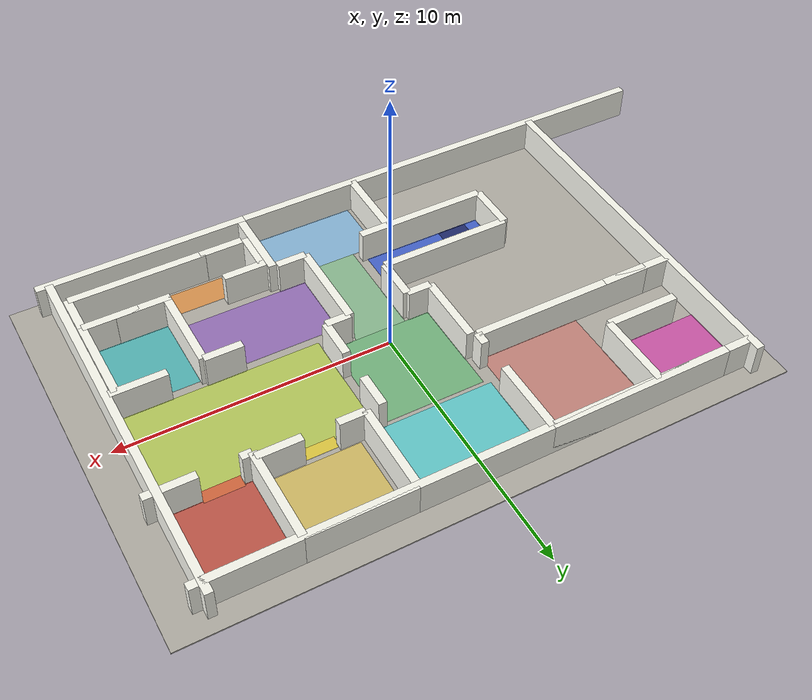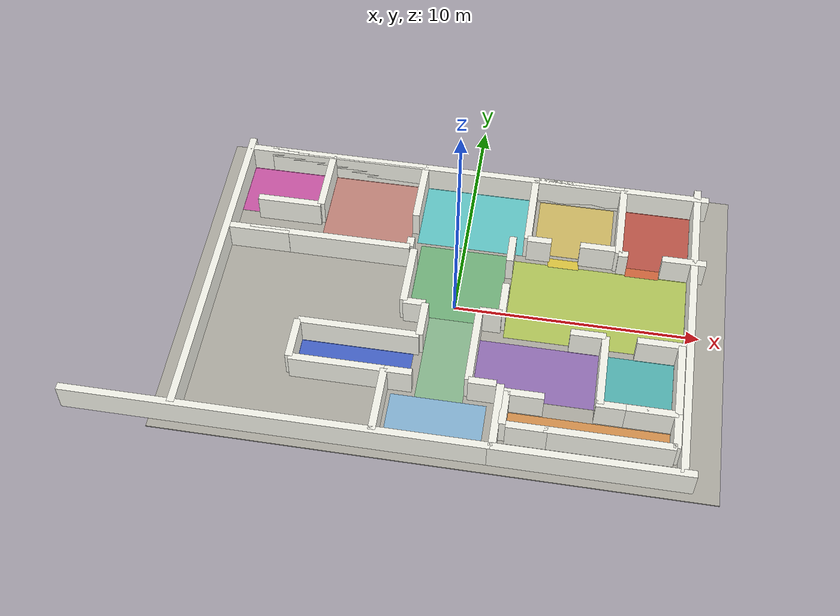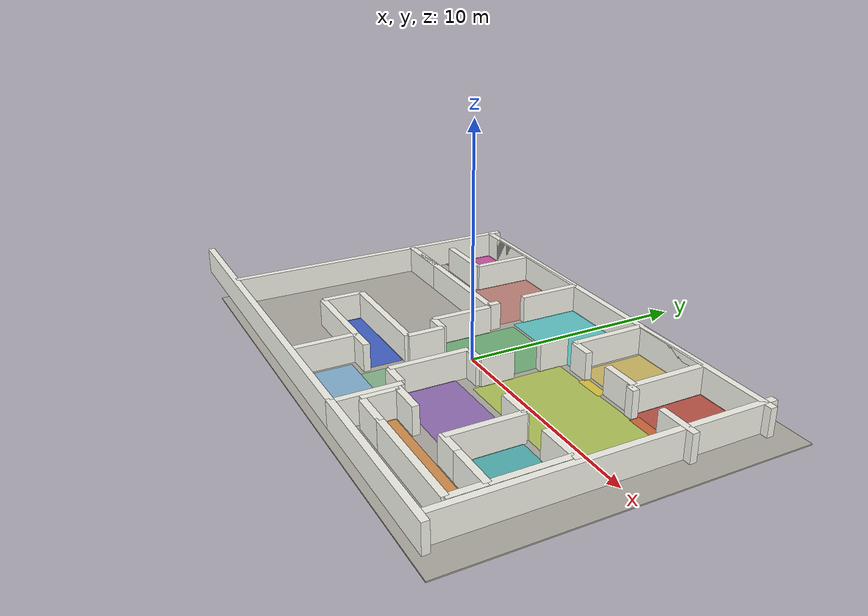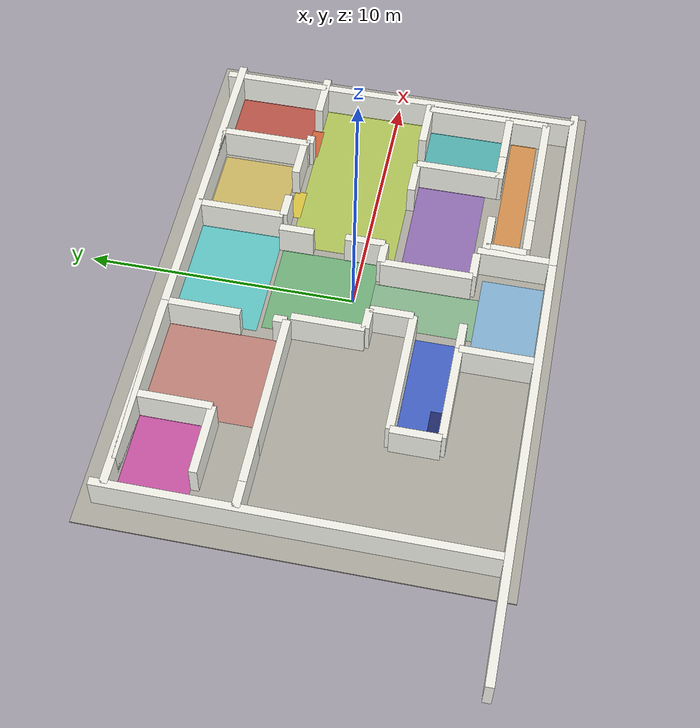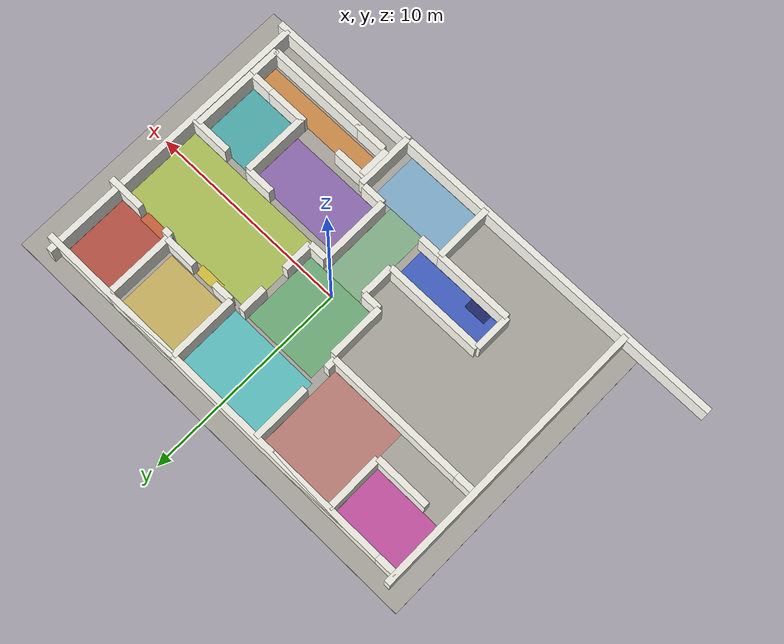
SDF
<sdf version="1.10">
 <world name="map">
  <model name="facility_floor">
   <static>true</static>
   <link name="floor_link">
    <pose>0 0 -0.025000000000000001 0 0 0</pose>
    <collision name="collision">
     <geometry><box><size>22 15 0.050000000000000003</size></box></geometry>
    </collision>
    <visual name="visual">
     <geometry><box><size>22 15 0.050000000000000003</size></box></geometry>
     <material>
      <ambient>0.699999988 0.689999998 0.649999976 1</ambient>
      <diffuse>0.699999988 0.689999998 0.649999976 1</diffuse>
      <specular>0.100000001 0.100000001 0.0799999982 1</specular>
     </material>
    </visual>
    <inertial>
     <mass>1</mass>
     <inertia><ixx>1</ixx><ixy>0</ixy><ixz>0</ixz><iyy>1</iyy><iyz>0</iyz><izz>1</izz></inertia>
    </inertial>
   </link>
  </model>
  <model name="wall_outer_north">
   <static>true</static>
   <pose>0 6.5 0.59999999999999998 0 0 0</pose>
   <link name="link">
    <collision name="collision">
     <geometry><box><size>20 0.29999999999999999 1.2</size></box></geometry>
    </collision>
    <visual name="visual">
     <geometry><box><size>20 0.29999999999999999 1.2</size></box></geometry>
     <material>
      <ambient>0.980000019 0.980000019 0.939999998 1</ambient>
      <diffuse>0.980000019 0.980000019 0.939999998 1</diffuse>
      <specular>0.349999994 0.349999994 0.319999993 1</specular>
     </material>
    </visual>
    <inertial>
     <mass>1</mass>
     <inertia><ixx>1</ixx><ixy>0</ixy><ixz>0</ixz><iyy>1</iyy><iyz>0</iyz><izz>1</izz></inertia>
    </inertial>
   </link>
  </model>
  <model name="wall_outer_west">
   <static>true</static>
   <pose>-10 0 0.59999999999999998 0 0 0</pose>
   <link name="link">
    <collision name="collision">
     <geometry><box><size>0.29999999999999999 14 1.2</size></box></geometry>
    </collision>
    <visual name="visual">
     <geometry><box><size>0.29999999999999999 14 1.2</size></box></geometry>
     <material>
      <ambient>0.980000019 0.980000019 0.939999998 1</ambient>
      <diffuse>0.980000019 0.980000019 0.939999998 1</diffuse>
      <specular>0.349999994 0.349999994 0.319999993 1</specular>
     </material>
    </visual>
    <inertial>
     <mass>1</mass>
     <inertia><ixx>1</ixx><ixy>0</ixy><ixz>0</ixz><iyy>1</iyy><iyz>0</iyz><izz>1</izz></inertia>
    </inertial>
   </link>
  </model>
  <model name="wall_outer_east">
   <static>true</static>
   <pose>9.5208196640014648 0 0.60000002384185791 0 0 0</pose>
   <link name="link">
    <collision name="collision">
     <geometry><box><size>0.29999999999999999 14 1.2</size></box></geometry>
    </collision>
    <visual name="visual">
     <geometry><box><size>0.29999999999999999 14 1.2</size></box></geometry>
     <material>
      <ambient>0.980000019 0.980000019 0.939999998 1</ambient>
      <diffuse>0.980000019 0.980000019 0.939999998 1</diffuse>
      <specular>0.349999994 0.349999994 0.319999993 1</specular>
     </material>
    </visual>
    <inertial>
     <mass>1</mass>
     <inertia><ixx>1</ixx><ixy>0</ixy><ixz>0</ixz><iyy>1</iyy><iyz>0</iyz><izz>1</izz></inertia>
    </inertial>
   </link>
  </model>
  <model name="wall_outer_south_west">
   <static>true</static>
   <pose>-6.0999999999999996 -7 0.59999999999999998 0 0 0</pose>
   <link name="link">
    <collision name="collision">
     <geometry><box><size>16.800000000000001 0.29999999999999999 1.2</size></box></geometry>
    </collision>
    <visual name="visual">
     <geometry><box><size>16.800000000000001 0.29999999999999999 1.2</size></box></geometry>
     <material>
      <ambient>0.980000019 0.980000019 0.939999998 1</ambient>
      <diffuse>0.980000019 0.980000019 0.939999998 1</diffuse>
      <specular>0.349999994 0.349999994 0.319999993 1</specular>
     </material>
    </visual>
    <inertial>
     <mass>1</mass>
     <inertia><ixx>1</ixx><ixy>0</ixy><ixz>0</ixz><iyy>1</iyy><iyz>0</iyz><izz>1</izz></inertia>
    </inertial>
   </link>
  </model>
  <model name="wall_outer_south_east">
   <static>true</static>
   <pose>6.0999999999999996 -7 0.59999999999999998 0 0 0</pose>
   <link name="link">
    <collision name="collision">
     <geometry><box><size>7.7999999999999998 0.29999999999999999 1.2</size></box></geometry>
    </collision>
    <visual name="visual">
     <geometry><box><size>7.7999999999999998 0.29999999999999999 1.2</size></box></geometry>
     <material>
      <ambient>0.980000019 0.980000019 0.939999998 1</ambient>
      <diffuse>0.980000019 0.980000019 0.939999998 1</diffuse>
      <specular>0.349999994 0.349999994 0.319999993 1</specular>
     </material>
    </visual>
    <inertial>
     <mass>1</mass>
     <inertia><ixx>1</ixx><ixy>0</ixy><ixz>0</ixz><iyy>1</iyy><iyz>0</iyz><izz>1</izz></inertia>
    </inertial>
   </link>
  </model>
  <model name="wall_lobby_west">
   <static>true</static>
   <pose>-2.2000000000000002 -5.5999999999999996 0.59999999999999998 0 0 0</pose>
   <link name="link">
    <collision name="collision">
     <geometry><box><size>0.29999999999999999 2.7999999999999998 1.2</size></box></geometry>
    </collision>
    <visual name="visual">
     <geometry><box><size>0.29999999999999999 2.7999999999999998 1.2</size></box></geometry>
     <material>
      <ambient>0.980000019 0.980000019 0.939999998 1</ambient>
      <diffuse>0.980000019 0.980000019 0.939999998 1</diffuse>
      <specular>0.349999994 0.349999994 0.319999993 1</specular>
     </material>
    </visual>
    <inertial>
     <mass>1</mass>
     <inertia><ixx>1</ixx><ixy>0</ixy><ixz>0</ixz><iyy>1</iyy><iyz>0</iyz><izz>1</izz></inertia>
    </inertial>
   </link>
  </model>
  <model name="wall_lobby_east">
   <static>true</static>
   <pose>2.3627526760101318 -5.5999999046325684 0.60000002384185791 0 0 0</pose>
   <link name="link">
    <collision name="collision">
     <geometry><box><size>0.29999999999999999 2.7999999999999998 1.2</size></box></geometry>
    </collision>
    <visual name="visual">
     <geometry><box><size>0.29999999999999999 2.7999999999999998 1.2</size></box></geometry>
     <material>
      <ambient>0.980000019 0.980000019 0.939999998 1</ambient>
      <diffuse>0.980000019 0.980000019 0.939999998 1</diffuse>
      <specular>0.349999994 0.349999994 0.319999993 1</specular>
     </material>
    </visual>
    <inertial>
     <mass>1</mass>
     <inertia><ixx>1</ixx><ixy>0</ixy><ixz>0</ixz><iyy>1</iyy><iyz>0</iyz><izz>1</izz></inertia>
    </inertial>
   </link>
  </model>
  <model name="wall_lobby_north_left">
   <static>true</static>
   <pose>-1.6499999999999999 -4.2000000000000002 0.59999999999999998 0 0 0</pose>
   <link name="link">
    <collision name="collision">
     <geometry><box><size>1.1000000000000001 0.29999999999999999 1.2</size></box></geometry>
    </collision>
    <visual name="visual">
     <geometry><box><size>1.1000000000000001 0.29999999999999999 1.2</size></box></geometry>
     <material>
      <ambient>0.980000019 0.980000019 0.939999998 1</ambient>
      <diffuse>0.980000019 0.980000019 0.939999998 1</diffuse>
      <specular>0.349999994 0.349999994 0.319999993 1</specular>
     </material>
    </visual>
    <inertial>
     <mass>1</mass>
     <inertia><ixx>1</ixx><ixy>0</ixy><ixz>0</ixz><iyy>1</iyy><iyz>0</iyz><izz>1</izz></inertia>
    </inertial>
   </link>
  </model>
  <model name="wall_lobby_north_right">
   <static>true</static>
   <pose>1.6499999999999999 -4.2000000000000002 0.59999999999999998 0 0 0</pose>
   <link name="link">
    <collision name="collision">
     <geometry><box><size>1.1000000000000001 0.29999999999999999 1.2</size></box></geometry>
    </collision>
    <visual name="visual">
     <geometry><box><size>1.1000000000000001 0.29999999999999999 1.2</size></box></geometry>
     <material>
      <ambient>0.980000019 0.980000019 0.939999998 1</ambient>
      <diffuse>0.980000019 0.980000019 0.939999998 1</diffuse>
      <specular>0.349999994 0.349999994 0.319999993 1</specular>
     </material>
    </visual>
    <inertial>
     <mass>1</mass>
     <inertia><ixx>1</ixx><ixy>0</ixy><ixz>0</ixz><iyy>1</iyy><iyz>0</iyz><izz>1</izz></inertia>
    </inertial>
   </link>
  </model>
  <model name="wall_mother_base_west">
   <static>true</static>
   <pose>-6 -3.2999999999999998 0.59999999999999998 0 0 0</pose>
   <link name="link">
    <collision name="collision">
     <geometry><box><size>0.29999999999999999 1.8 1.2</size></box></geometry>
    </collision>
    <visual name="visual">
     <geometry><box><size>0.29999999999999999 1.8 1.2</size></box></geometry>
     <material>
      <ambient>0.980000019 0.980000019 0.939999998 1</ambient>
      <diffuse>0.980000019 0.980000019 0.939999998 1</diffuse>
      <specular>0.349999994 0.349999994 0.319999993 1</specular>
     </material>
    </visual>
    <inertial>
     <mass>1</mass>
     <inertia><ixx>1</ixx><ixy>0</ixy><ixz>0</ixz><iyy>1</iyy><iyz>0</iyz><izz>1</izz></inertia>
    </inertial>
   </link>
  </model>
  <model name="wall_mother_base_north">
   <static>true</static>
   <pose>-3.5499999999999998 -2.3999999999999999 0.59999999999999998 0 0 0</pose>
   <link name="link">
    <collision name="collision">
     <geometry><box><size>4.9000000000000004 0.29999999999999999 1.2</size></box></geometry>
    </collision>
    <visual name="visual">
     <geometry><box><size>4.9000000000000004 0.29999999999999999 1.2</size></box></geometry>
     <material>
      <ambient>0.980000019 0.980000019 0.939999998 1</ambient>
      <diffuse>0.980000019 0.980000019 0.939999998 1</diffuse>
      <specular>0.349999994 0.349999994 0.319999993 1</specular>
     </material>
    </visual>
    <inertial>
     <mass>1</mass>
     <inertia><ixx>1</ixx><ixy>0</ixy><ixz>0</ixz><iyy>1</iyy><iyz>0</iyz><izz>1</izz></inertia>
    </inertial>
   </link>
  </model>
  <model name="wall_mother_base_south">
   <static>true</static>
   <pose>-4.0999999999999996 -4.2000000000000002 0.59999999999999998 0 0 0</pose>
   <link name="link">
    <collision name="collision">
     <geometry><box><size>3.7999999999999998 0.29999999999999999 1.2</size></box></geometry>
    </collision>
    <visual name="visual">
     <geometry><box><size>3.7999999999999998 0.29999999999999999 1.2</size></box></geometry>
     <material>
      <ambient>0.980000019 0.980000019 0.939999998 1</ambient>
      <diffuse>0.980000019 0.980000019 0.939999998 1</diffuse>
      <specular>0.349999994 0.349999994 0.319999993 1</specular>
     </material>
    </visual>
    <inertial>
     <mass>1</mass>
     <inertia><ixx>1</ixx><ixy>0</ixy><ixz>0</ixz><iyy>1</iyy><iyz>0</iyz><izz>1</izz></inertia>
    </inertial>
   </link>
  </model>
  <model name="wall_corridor_east">
   <static>true</static>
   <pose>1.1000000000000001 -2.5 0.59999999999999998 0 0 0</pose>
   <link name="link">
    <collision name="collision">
     <geometry><box><size>0.29999999999999999 3.3999999999999999 1.2</size></box></geometry>
    </collision>
    <visual name="visual">
     <geometry><box><size>0.29999999999999999 3.3999999999999999 1.2</size></box></geometry>
     <material>
      <ambient>0.980000019 0.980000019 0.939999998 1</ambient>
      <diffuse>0.980000019 0.980000019 0.939999998 1</diffuse>
      <specular>0.349999994 0.349999994 0.319999993 1</specular>
     </material>
    </visual>
    <inertial>
     <mass>1</mass>
     <inertia><ixx>1</ixx><ixy>0</ixy><ixz>0</ixz><iyy>1</iyy><iyz>0</iyz><izz>1</izz></inertia>
    </inertial>
   </link>
  </model>
  <model name="wall_corridor_west">
   <static>true</static>
   <pose>-1.1000000000000001 -1.6000000000000001 0.59999999999999998 0 0 0</pose>
   <link name="link">
    <collision name="collision">
     <geometry><box><size>0.29999999999999999 1.6000000000000001 1.2</size></box></geometry>
    </collision>
    <visual name="visual">
     <geometry><box><size>0.29999999999999999 1.6000000000000001 1.2</size></box></geometry>
     <material>
      <ambient>0.980000019 0.980000019 0.939999998 1</ambient>
      <diffuse>0.980000019 0.980000019 0.939999998 1</diffuse>
      <specular>0.349999994 0.349999994 0.319999993 1</specular>
     </material>
    </visual>
    <inertial>
     <mass>1</mass>
     <inertia><ixx>1</ixx><ixy>0</ixy><ixz>0</ixz><iyy>1</iyy><iyz>0</iyz><izz>1</izz></inertia>
    </inertial>
   </link>
  </model>
  <model name="wall_hall_south_left">
   <static>true</static>
   <pose>-1.55 -0.80000000000000004 0.59999999999999998 0 0 0</pose>
   <link name="link">
    <collision name="collision">
     <geometry><box><size>0.90000000000000002 0.29999999999999999 1.2</size></box></geometry>
    </collision>
    <visual name="visual">
     <geometry><box><size>0.90000000000000002 0.29999999999999999 1.2</size></box></geometry>
     <material>
      <ambient>0.980000019 0.980000019 0.939999998 1</ambient>
      <diffuse>0.980000019 0.980000019 0.939999998 1</diffuse>
      <specular>0.349999994 0.349999994 0.319999993 1</specular>
     </material>
    </visual>
    <inertial>
     <mass>1</mass>
     <inertia><ixx>1</ixx><ixy>0</ixy><ixz>0</ixz><iyy>1</iyy><iyz>0</iyz><izz>1</izz></inertia>
    </inertial>
   </link>
  </model>
  <model name="wall_hall_south_right">
   <static>true</static>
   <pose>1.55 -0.80000000000000004 0.59999999999999998 0 0 0</pose>
   <link name="link">
    <collision name="collision">
     <geometry><box><size>0.90000000000000002 0.29999999999999999 1.2</size></box></geometry>
    </collision>
    <visual name="visual">
     <geometry><box><size>0.90000000000000002 0.29999999999999999 1.2</size></box></geometry>
     <material>
      <ambient>0.980000019 0.980000019 0.939999998 1</ambient>
      <diffuse>0.980000019 0.980000019 0.939999998 1</diffuse>
      <specular>0.349999994 0.349999994 0.319999993 1</specular>
     </material>
    </visual>
    <inertial>
     <mass>1</mass>
     <inertia><ixx>1</ixx><ixy>0</ixy><ixz>0</ixz><iyy>1</iyy><iyz>0</iyz><izz>1</izz></inertia>
    </inertial>
   </link>
  </model>
  <model name="wall_hall_west_lower">
   <static>true</static>
   <pose>-2 0.55000000000000004 0.59999999999999998 0 0 0</pose>
   <link name="link">
    <collision name="collision">
     <geometry><box><size>0.29999999999999999 2.7000000000000002 1.2</size></box></geometry>
    </collision>
    <visual name="visual">
     <geometry><box><size>0.29999999999999999 2.7000000000000002 1.2</size></box></geometry>
     <material>
      <ambient>0.980000019 0.980000019 0.939999998 1</ambient>
      <diffuse>0.980000019 0.980000019 0.939999998 1</diffuse>
      <specular>0.349999994 0.349999994 0.319999993 1</specular>
     </material>
    </visual>
    <inertial>
     <mass>1</mass>
     <inertia><ixx>1</ixx><ixy>0</ixy><ixz>0</ixz><iyy>1</iyy><iyz>0</iyz><izz>1</izz></inertia>
    </inertial>
   </link>
  </model>
  <model name="wall_hall_east_lower">
   <static>true</static>
   <pose>2 -0.050000000000000003 0.59999999999999998 0 0 0</pose>
   <link name="link">
    <collision name="collision">
     <geometry><box><size>0.29999999999999999 1.5 1.2</size></box></geometry>
    </collision>
    <visual name="visual">
     <geometry><box><size>0.29999999999999999 1.5 1.2</size></box></geometry>
     <material>
      <ambient>0.980000019 0.980000019 0.939999998 1</ambient>
      <diffuse>0.980000019 0.980000019 0.939999998 1</diffuse>
      <specular>0.349999994 0.349999994 0.319999993 1</specular>
     </material>
    </visual>
    <inertial>
     <mass>1</mass>
     <inertia><ixx>1</ixx><ixy>0</ixy><ixz>0</ixz><iyy>1</iyy><iyz>0</iyz><izz>1</izz></inertia>
    </inertial>
   </link>
  </model>
  <model name="wall_hall_east_upper">
   <static>true</static>
   <pose>2 2.5499999999999998 0.59999999999999998 0 0 0</pose>
   <link name="link">
    <collision name="collision">
     <geometry><box><size>0.29999999999999999 1.3 1.2</size></box></geometry>
    </collision>
    <visual name="visual">
     <geometry><box><size>0.29999999999999999 1.3 1.2</size></box></geometry>
     <material>
      <ambient>0.980000019 0.980000019 0.939999998 1</ambient>
      <diffuse>0.980000019 0.980000019 0.939999998 1</diffuse>
      <specular>0.349999994 0.349999994 0.319999993 1</specular>
     </material>
    </visual>
    <inertial>
     <mass>1</mass>
     <inertia><ixx>1</ixx><ixy>0</ixy><ixz>0</ixz><iyy>1</iyy><iyz>0</iyz><izz>1</izz></inertia>
    </inertial>
   </link>
  </model>
  <model name="wall_lab_north">
   <static>true</static>
   <pose>-5.5999999999999996 6.5 0.59999999999999998 0 0 0</pose>
   <link name="link">
    <collision name="collision">
     <geometry><box><size>6.7999999999999998 0.29999999999999999 1.2</size></box></geometry>
    </collision>
    <visual name="visual">
     <geometry><box><size>6.7999999999999998 0.29999999999999999 1.2</size></box></geometry>
     <material>
      <ambient>0.980000019 0.980000019 0.939999998 1</ambient>
      <diffuse>0.980000019 0.980000019 0.939999998 1</diffuse>
      <specular>0.349999994 0.349999994 0.319999993 1</specular>
     </material>
    </visual>
    <inertial>
     <mass>1</mass>
     <inertia><ixx>1</ixx><ixy>0</ixy><ixz>0</ixz><iyy>1</iyy><iyz>0</iyz><izz>1</izz></inertia>
    </inertial>
   </link>
  </model>
  <model name="wall_lab_south">
   <static>true</static>
   <pose>-5.5999999999999996 2 0.59999999999999998 0 0 0</pose>
   <link name="link">
    <collision name="collision">
     <geometry><box><size>6.7999999999999998 0.29999999999999999 1.2</size></box></geometry>
    </collision>
    <visual name="visual">
     <geometry><box><size>6.7999999999999998 0.29999999999999999 1.2</size></box></geometry>
     <material>
      <ambient>0.980000019 0.980000019 0.939999998 1</ambient>
      <diffuse>0.980000019 0.980000019 0.939999998 1</diffuse>
      <specular>0.349999994 0.349999994 0.319999993 1</specular>
     </material>
    </visual>
    <inertial>
     <mass>1</mass>
     <inertia><ixx>1</ixx><ixy>0</ixy><ixz>0</ixz><iyy>1</iyy><iyz>0</iyz><izz>1</izz></inertia>
    </inertial>
   </link>
  </model>
  <model name="wall_lab_east_lower">
   <static>true</static>
   <pose>-2.2000000000000002 2.25 0.59999999999999998 0 0 0</pose>
   <link name="link">
    <collision name="collision">
     <geometry><box><size>0.29999999999999999 0.5 1.2</size></box></geometry>
    </collision>
    <visual name="visual">
     <geometry><box><size>0.29999999999999999 0.5 1.2</size></box></geometry>
     <material>
      <ambient>0.980000019 0.980000019 0.939999998 1</ambient>
      <diffuse>0.980000019 0.980000019 0.939999998 1</diffuse>
      <specular>0.349999994 0.349999994 0.319999993 1</specular>
     </material>
    </visual>
    <inertial>
     <mass>1</mass>
     <inertia><ixx>1</ixx><ixy>0</ixy><ixz>0</ixz><iyy>1</iyy><iyz>0</iyz><izz>1</izz></inertia>
    </inertial>
   </link>
  </model>
  <model name="wall_lab_east_upper">
   <static>true</static>
   <pose>-2.2000000000000002 5.0999999999999996 0.59999999999999998 0 0 0</pose>
   <link name="link">
    <collision name="collision">
     <geometry><box><size>0.29999999999999999 2.7999999999999998 1.2</size></box></geometry>
    </collision>
    <visual name="visual">
     <geometry><box><size>0.29999999999999999 2.7999999999999998 1.2</size></box></geometry>
     <material>
      <ambient>0.980000019 0.980000019 0.939999998 1</ambient>
      <diffuse>0.980000019 0.980000019 0.939999998 1</diffuse>
      <specular>0.349999994 0.349999994 0.319999993 1</specular>
     </material>
    </visual>
    <inertial>
     <mass>1</mass>
     <inertia><ixx>1</ixx><ixy>0</ixy><ixz>0</ixz><iyy>1</iyy><iyz>0</iyz><izz>1</izz></inertia>
    </inertial>
   </link>
  </model>
  <model name="wall_prep_partition">
   <static>true</static>
   <pose>-6.2999999999999998 5.0999999999999996 0.59999999999999998 0 0 0</pose>
   <link name="link">
    <collision name="collision">
     <geometry><box><size>0.29999999999999999 2.7999999999999998 1.2</size></box></geometry>
    </collision>
    <visual name="visual">
     <geometry><box><size>0.29999999999999999 2.7999999999999998 1.2</size></box></geometry>
     <material>
      <ambient>0.980000019 0.980000019 0.939999998 1</ambient>
      <diffuse>0.980000019 0.980000019 0.939999998 1</diffuse>
      <specular>0.349999994 0.349999994 0.319999993 1</specular>
     </material>
    </visual>
    <inertial>
     <mass>1</mass>
     <inertia><ixx>1</ixx><ixy>0</ixy><ixz>0</ixz><iyy>1</iyy><iyz>0</iyz><izz>1</izz></inertia>
    </inertial>
   </link>
  </model>
  <model name="wall_prep_south">
   <static>true</static>
   <pose>-7.6500000000000004 3.7000000000000002 0.59999999999999998 0 0 0</pose>
   <link name="link">
    <collision name="collision">
     <geometry><box><size>2.7000000000000002 0.29999999999999999 1.2</size></box></geometry>
    </collision>
    <visual name="visual">
     <geometry><box><size>2.7000000000000002 0.29999999999999999 1.2</size></box></geometry>
     <material>
      <ambient>0.980000019 0.980000019 0.939999998 1</ambient>
      <diffuse>0.980000019 0.980000019 0.939999998 1</diffuse>
      <specular>0.349999994 0.349999994 0.319999993 1</specular>
     </material>
    </visual>
    <inertial>
     <mass>1</mass>
     <inertia><ixx>1</ixx><ixy>0</ixy><ixz>0</ixz><iyy>1</iyy><iyz>0</iyz><izz>1</izz></inertia>
    </inertial>
   </link>
  </model>
  <model name="wall_server_west">
   <static>true</static>
   <pose>2.6000000000000001 4.8499999999999996 0.59999999999999998 0 0 0</pose>
   <link name="link">
    <collision name="collision">
     <geometry><box><size>0.29999999999999999 3.2999999999999998 1.2</size></box></geometry>
    </collision>
    <visual name="visual">
     <geometry><box><size>0.29999999999999999 3.2999999999999998 1.2</size></box></geometry>
     <material>
      <ambient>0.980000019 0.980000019 0.939999998 1</ambient>
      <diffuse>0.980000019 0.980000019 0.939999998 1</diffuse>
      <specular>0.349999994 0.349999994 0.319999993 1</specular>
     </material>
    </visual>
    <inertial>
     <mass>1</mass>
     <inertia><ixx>1</ixx><ixy>0</ixy><ixz>0</ixz><iyy>1</iyy><iyz>0</iyz><izz>1</izz></inertia>
    </inertial>
   </link>
  </model>
  <model name="wall_server_north">
   <static>true</static>
   <pose>4.5 6.5 0.59999999999999998 0 0 0</pose>
   <link name="link">
    <collision name="collision">
     <geometry><box><size>3.7999999999999998 0.29999999999999999 1.2</size></box></geometry>
    </collision>
    <visual name="visual">
     <geometry><box><size>3.7999999999999998 0.29999999999999999 1.2</size></box></geometry>
     <material>
      <ambient>0.980000019 0.980000019 0.939999998 1</ambient>
      <diffuse>0.980000019 0.980000019 0.939999998 1</diffuse>
      <specular>0.349999994 0.349999994 0.319999993 1</specular>
     </material>
    </visual>
    <inertial>
     <mass>1</mass>
     <inertia><ixx>1</ixx><ixy>0</ixy><ixz>0</ixz><iyy>1</iyy><iyz>0</iyz><izz>1</izz></inertia>
    </inertial>
   </link>
  </model>
  <model name="wall_server_south_left">
   <static>true</static>
   <pose>3.1000000000000001 3.2000000000000002 0.59999999999999998 0 0 0</pose>
   <link name="link">
    <collision name="collision"><geometry><box><size>1 0.29999999999999999 1.2</size></box></geometry></collision>
    <visual name="visual">
     <geometry><box><size>1 0.29999999999999999 1.2</size></box></geometry>
     <material>
      <ambient>0.980000019 0.980000019 0.939999998 1</ambient>
      <diffuse>0.980000019 0.980000019 0.939999998 1</diffuse>
      <specular>0.349999994 0.349999994 0.319999993 1</specular>
     </material>
    </visual>
    <inertial>
     <mass>1</mass>
     <inertia><ixx>1</ixx><ixy>0</ixy><ixz>0</ixz><iyy>1</iyy><iyz>0</iyz><izz>1</izz></inertia>
    </inertial>
   </link>
  </model>
  <model name="wall_server_south_right">
   <static>true</static>
   <pose>5.5999999999999996 3.2000000000000002 0.59999999999999998 0 0 0</pose>
   <link name="link">
    <collision name="collision">
     <geometry><box><size>1.6000000000000001 0.29999999999999999 1.2</size></box></geometry>
    </collision>
    <visual name="visual">
     <geometry><box><size>1.6000000000000001 0.29999999999999999 1.2</size></box></geometry>
     <material>
      <ambient>0.980000019 0.980000019 0.939999998 1</ambient>
      <diffuse>0.980000019 0.980000019 0.939999998 1</diffuse>
      <specular>0.349999994 0.349999994 0.319999993 1</specular>
     </material>
    </visual>
    <inertial>
     <mass>1</mass>
     <inertia><ixx>1</ixx><ixy>0</ixy><ixz>0</ixz><iyy>1</iyy><iyz>0</iyz><izz>1</izz></inertia>
    </inertial>
   </link>
  </model>
  <model name="wall_restricted_west">
   <static>true</static>
   <pose>6.4000000000000004 4.75 0.59999999999999998 0 0 0</pose>
   <link name="link">
    <collision name="collision">
     <geometry><box><size>0.29999999999999999 3.5 1.2</size></box></geometry>
    </collision>
    <visual name="visual">
     <geometry><box><size>0.29999999999999999 3.5 1.2</size></box></geometry>
     <material>
      <ambient>0.980000019 0.980000019 0.939999998 1</ambient>
      <diffuse>0.980000019 0.980000019 0.939999998 1</diffuse>
      <specular>0.349999994 0.349999994 0.319999993 1</specular>
     </material>
    </visual>
    <inertial>
     <mass>1</mass>
     <inertia><ixx>1</ixx><ixy>0</ixy><ixz>0</ixz><iyy>1</iyy><iyz>0</iyz><izz>1</izz></inertia>
    </inertial>
   </link>
  </model>
  <model name="wall_restricted_south_left">
   <static>true</static>
   <pose>6.5999999999999996 3 0.59999999999999998 0 0 0</pose>
   <link name="link">
    <collision name="collision">
     <geometry><box><size>0.40000000000000002 0.29999999999999999 1.2</size></box></geometry>
    </collision>
    <visual name="visual">
     <geometry><box><size>0.40000000000000002 0.29999999999999999 1.2</size></box></geometry>
     <material>
      <ambient>0.980000019 0.980000019 0.939999998 1</ambient>
      <diffuse>0.980000019 0.980000019 0.939999998 1</diffuse>
      <specular>0.349999994 0.349999994 0.319999993 1</specular>
     </material>
    </visual>
    <inertial>
     <mass>1</mass>
     <inertia><ixx>1</ixx><ixy>0</ixy><ixz>0</ixz><iyy>1</iyy><iyz>0</iyz><izz>1</izz></inertia>
    </inertial>
   </link>
  </model>
  <model name="wall_restricted_south_right">
   <static>true</static>
   <pose>9.0999999999999996 3 0.59999999999999998 0 0 0</pose>
   <link name="link">
    <collision name="collision">
     <geometry><box><size>1.8 0.29999999999999999 1.2</size></box></geometry>
    </collision>
    <visual name="visual">
     <geometry><box><size>1.8 0.29999999999999999 1.2</size></box></geometry>
     <material>
      <ambient>0.980000019 0.980000019 0.939999998 1</ambient>
      <diffuse>0.980000019 0.980000019 0.939999998 1</diffuse>
      <specular>0.349999994 0.349999994 0.319999993 1</specular>
     </material>
    </visual>
    <inertial>
     <mass>1</mass>
     <inertia><ixx>1</ixx><ixy>0</ixy><ixz>0</ixz><iyy>1</iyy><iyz>0</iyz><izz>1</izz></inertia>
    </inertial>
   </link>
  </model>
  <model name="wall_service_east">
   <static>true</static>
   <pose>9.1999999999999993 -2.8999999999999999 0.59999999999999998 0 0 0</pose>
   <link name="link">
    <collision name="collision">
     <geometry><box><size>0.29999999999999999 3.2000000000000002 1.2</size></box></geometry>
    </collision>
    <visual name="visual">
     <geometry><box><size>0.29999999999999999 3.2000000000000002 1.2</size></box></geometry>
     <material>
      <ambient>0.980000019 0.980000019 0.939999998 1</ambient>
      <diffuse>0.980000019 0.980000019 0.939999998 1</diffuse>
      <specular>0.349999994 0.349999994 0.319999993 1</specular>
     </material>
    </visual>
    <inertial>
     <mass>1</mass>
     <inertia><ixx>1</ixx><ixy>0</ixy><ixz>0</ixz><iyy>1</iyy><iyz>0</iyz><izz>1</izz></inertia>
    </inertial>
   </link>
  </model>
  <model name="wall_storage_utility_partition">
   <static>true</static>
   <pose>6.2000000000000002 -2.8999999999999999 0.59999999999999998 0 0 0</pose>
   <link name="link">
    <collision name="collision">
     <geometry><box><size>0.29999999999999999 3.2000000000000002 1.2</size></box></geometry>
    </collision>
    <visual name="visual">
     <geometry><box><size>0.29999999999999999 3.2000000000000002 1.2</size></box></geometry>
     <material>
      <ambient>0.980000019 0.980000019 0.939999998 1</ambient>
      <diffuse>0.980000019 0.980000019 0.939999998 1</diffuse>
      <specular>0.349999994 0.349999994 0.319999993 1</specular>
     </material>
    </visual>
    <inertial>
     <mass>1</mass>
     <inertia><ixx>1</ixx><ixy>0</ixy><ixz>0</ixz><iyy>1</iyy><iyz>0</iyz><izz>1</izz></inertia>
    </inertial>
   </link>
  </model>
  <model name="wall_service_north_mid">
   <static>true</static>
   <pose>5.5 -1.3 0.59999999999999998 0 0 0</pose>
   <link name="link">
    <collision name="collision">
     <geometry><box><size>1.3999999999999999 0.29999999999999999 1.2</size></box></geometry>
    </collision>
    <visual name="visual">
     <geometry><box><size>1.3999999999999999 0.29999999999999999 1.2</size></box></geometry>
     <material>
      <ambient>0.980000019 0.980000019 0.939999998 1</ambient>
      <diffuse>0.980000019 0.980000019 0.939999998 1</diffuse>
      <specular>0.349999994 0.349999994 0.319999993 1</specular>
     </material>
    </visual>
    <inertial>
     <mass>1</mass>
     <inertia><ixx>1</ixx><ixy>0</ixy><ixz>0</ixz><iyy>1</iyy><iyz>0</iyz><izz>1</izz></inertia>
    </inertial>
   </link>
  </model>
  <model name="wall_service_north_right">
   <static>true</static>
   <pose>8.4329242706298828 -1.2999999523162842 0.60000002384185791 0 0 0</pose>
   <link name="link">
    <collision name="collision"><geometry><box><size>2 0.29999999999999999 1.2</size></box></geometry></collision>
    <visual name="visual">
     <geometry><box><size>2 0.29999999999999999 1.2</size></box></geometry>
     <material>
      <ambient>0.980000019 0.980000019 0.939999998 1</ambient>
      <diffuse>0.980000019 0.980000019 0.939999998 1</diffuse>
      <specular>0.349999994 0.349999994 0.319999993 1</specular>
     </material>
    </visual>
    <inertial>
     <mass>1</mass>
     <inertia><ixx>1</ixx><ixy>0</ixy><ixz>0</ixz><iyy>1</iyy><iyz>0</iyz><izz>1</izz></inertia>
    </inertial>
   </link>
  </model>
  <model name="wall_passage_north_left">
   <static>true</static>
   <pose>3.2888946533203125 -4.5 0.60000002384185791 0 0 0</pose>
   <link name="link">
    <collision name="collision">
     <geometry><box><size>1.6000000000000001 0.29999999999999999 1.2</size></box></geometry>
    </collision>
    <visual name="visual">
     <geometry><box><size>1.6000000000000001 0.29999999999999999 1.2</size></box></geometry>
     <material>
      <ambient>0.980000019 0.980000019 0.939999998 1</ambient>
      <diffuse>0.980000019 0.980000019 0.939999998 1</diffuse>
      <specular>0.349999994 0.349999994 0.319999993 1</specular>
     </material>
    </visual>
    <inertial>
     <mass>1</mass>
     <inertia><ixx>1</ixx><ixy>0</ixy><ixz>0</ixz><iyy>1</iyy><iyz>0</iyz><izz>1</izz></inertia>
    </inertial>
   </link>
  </model>
  <model name="wall_passage_north_right">
   <static>true</static>
   <pose>8.1999999999999993 -4.5 0.59999999999999998 0 0 0</pose>
   <link name="link">
    <collision name="collision"><geometry><box><size>2 0.29999999999999999 1.2</size></box></geometry></collision>
    <visual name="visual">
     <geometry><box><size>2 0.29999999999999999 1.2</size></box></geometry>
     <material>
      <ambient>0.980000019 0.980000019 0.939999998 1</ambient>
      <diffuse>0.980000019 0.980000019 0.939999998 1</diffuse>
      <specular>0.349999994 0.349999994 0.319999993 1</specular>
     </material>
    </visual>
    <inertial>
     <mass>1</mass>
     <inertia><ixx>1</ixx><ixy>0</ixy><ixz>0</ixz><iyy>1</iyy><iyz>0</iyz><izz>1</izz></inertia>
    </inertial>
   </link>
  </model>
  <model name="wall_passage_south">
   <static>true</static>
   <pose>6.6999998092651367 -5.9598908424377441 0.60000002384185791 0 0 0</pose>
   <link name="link">
    <collision name="collision"><geometry><box><size>5 0.29999999999999999 1.2</size></box></geometry></collision>
    <visual name="visual">
     <geometry><box><size>5 0.29999999999999999 1.2</size></box></geometry>
     <material>
      <ambient>0.980000019 0.980000019 0.939999998 1</ambient>
      <diffuse>0.980000019 0.980000019 0.939999998 1</diffuse>
      <specular>0.349999994 0.349999994 0.319999993 1</specular>
     </material>
    </visual>
    <inertial>
     <mass>1</mass>
     <inertia><ixx>1</ixx><ixy>0</ixy><ixz>0</ixz><iyy>1</iyy><iyz>0</iyz><izz>1</izz></inertia>
    </inertial>
   </link>
  </model>
  <model name="wall_passage_west">
   <static>true</static>
   <pose>2.6165173053741455 -5.2330198287963867 0.60000002384185791 0 0 0</pose>
   <link name="link">
    <collision name="collision">
     <geometry><box><size>0.29999999999999999 1.5 1.2</size></box></geometry>
    </collision>
    <visual name="visual">
     <geometry><box><size>0.29999999999999999 1.5 1.2</size></box></geometry>
     <material>
      <ambient>0.980000019 0.980000019 0.939999998 1</ambient>
      <diffuse>0.980000019 0.980000019 0.939999998 1</diffuse>
      <specular>0.349999994 0.349999994 0.319999993 1</specular>
     </material>
    </visual>
    <inertial>
     <mass>1</mass>
     <inertia><ixx>1</ixx><ixy>0</ixy><ixz>0</ixz><iyy>1</iyy><iyz>0</iyz><izz>1</izz></inertia>
    </inertial>
   </link>
  </model>
  <model name="wall_passage_east">
   <static>true</static>
   <pose>9.1999999999999993 -5.25 0.59999999999999998 0 0 0</pose>
   <link name="link">
    <collision name="collision">
     <geometry><box><size>0.29999999999999999 1.5 1.2</size></box></geometry>
    </collision>
    <visual name="visual">
     <geometry><box><size>0.29999999999999999 1.5 1.2</size></box></geometry>
     <material>
      <ambient>0.980000019 0.980000019 0.939999998 1</ambient>
      <diffuse>0.980000019 0.980000019 0.939999998 1</diffuse>
      <specular>0.349999994 0.349999994 0.319999993 1</specular>
     </material>
    </visual>
    <inertial>
     <mass>1</mass>
     <inertia><ixx>1</ixx><ixy>0</ixy><ixz>0</ixz><iyy>1</iyy><iyz>0</iyz><izz>1</izz></inertia>
    </inertial>
   </link>
  </model>
  <model name="entrance_marker">
   <static>true</static>
   <pose>0 -5.7000000000000002 0.012 0 0 0</pose>
   <link name="link">
    <visual name="visual">
     <geometry><box><size>3.7999999999999998 2.2999999999999998 0.02</size></box></geometry>
     <material>
      <ambient>0.5 0.779999971 1 0.660000026</ambient>
      <diffuse>0.5 0.779999971 1 0.660000026</diffuse>
      <emissive>0.0700000003 0.119999997 0.180000007 1</emissive>
     </material>
    </visual>
    <inertial>
     <mass>1</mass>
     <inertia><ixx>1</ixx><ixy>0</ixy><ixz>0</ixz><iyy>1</iyy><iyz>0</iyz><izz>1</izz></inertia>
    </inertial>
   </link>
  </model>
  <model name="corridor_marker">
   <static>true</static>
   <pose>0 -2.6 0.012 0 0 0</pose>
   <link name="link">
    <visual name="visual">
     <geometry><box><size>1.9 3.9 0.02</size></box></geometry>
     <material>
      <ambient>0.479999989 0.819999993 0.560000002 0.560000002</ambient>
      <diffuse>0.479999989 0.819999993 0.560000002 0.560000002</diffuse>
      <emissive>0.0500000007 0.119999997 0.0500000007 1</emissive>
     </material>
    </visual>
    <inertial>
     <mass>1</mass>
     <inertia><ixx>1</ixx><ixy>0</ixy><ixz>0</ixz><iyy>1</iyy><iyz>0</iyz><izz>1</izz></inertia>
    </inertial>
   </link>
  </model>
  <model name="central_hall_marker">
   <static>true</static>
   <pose>0 1.2 0.014 0 0 0</pose>
   <link name="link">
    <visual name="visual">
     <geometry><box><size>3.7000000000000002 3.7000000000000002 0.02</size></box></geometry>
     <material>
      <ambient>0.400000006 0.779999971 0.479999989 0.680000007</ambient>
      <diffuse>0.400000006 0.779999971 0.479999989 0.680000007</diffuse>
      <emissive>0.0599999987 0.140000001 0.0599999987 1</emissive>
     </material>
    </visual>
    <inertial>
     <mass>1</mass>
     <inertia><ixx>1</ixx><ixy>0</ixy><ixz>0</ixz><iyy>1</iyy><iyz>0</iyz><izz>1</izz></inertia>
    </inertial>
   </link>
  </model>
  <model name="mother_base_marker">
   <static>true</static>
   <pose>-3.575 -3.3 0.014 0 0 0</pose>
   <link name="link">
    <visual name="visual">
     <geometry><box><size>4.55 1.5 0.02</size></box></geometry>
     <material>
      <ambient>0.140000001 0.319999993 0.920000017 0.699999988</ambient>
      <diffuse>0.140000001 0.319999993 0.920000017 0.699999988</diffuse>
      <emissive>0.0299999993 0.0599999987 0.180000007 1</emissive>
     </material>
    </visual>
    <inertial>
     <mass>1</mass>
     <inertia><ixx>1</ixx><ixy>0</ixy><ixz>0</ixz><iyy>1</iyy><iyz>0</iyz><izz>1</izz></inertia>
    </inertial>
   </link>
  </model>
  <model name="charging_marker">
   <static>true</static>
   <pose>-4.7999999999999998 -3.825 0.016 0 0 0</pose>
   <link name="link">
    <visual name="visual">
     <geometry><box><size>1.1000000000000001 0.45000000000000001 0.02</size></box></geometry>
     <material>
      <ambient>0.0199999996 0.0799999982 0.419999987 0.779999971</ambient>
      <diffuse>0.0199999996 0.0799999982 0.419999987 0.779999971</diffuse>
      <emissive>0.0199999996 0.0399999991 0.140000001 1</emissive>
     </material>
    </visual>
    <inertial>
     <mass>1</mass>
     <inertia><ixx>1</ixx><ixy>0</ixy><ixz>0</ixz><iyy>1</iyy><iyz>0</iyz><izz>1</izz></inertia>
    </inertial>
   </link>
  </model>
  <model name="lab_marker">
   <static>true</static>
   <pose>-4.25 4.25 0.012 0 0 0</pose>
   <link name="link">
    <visual name="visual">
     <geometry><box><size>3.8 4.2 0.02</size></box></geometry>
     <material>
      <ambient>0.879999995 0.460000008 0.419999987 0.579999983</ambient>
      <diffuse>0.879999995 0.460000008 0.419999987 0.579999983</diffuse>
      <emissive>0.119999997 0.0399999991 0.0299999993 1</emissive>
     </material>
    </visual>
    <inertial>
     <mass>1</mass>
     <inertia><ixx>1</ixx><ixy>0</ixy><ixz>0</ixz><iyy>1</iyy><iyz>0</iyz><izz>1</izz></inertia>
    </inertial>
   </link>
  </model>
  <model name="prep_room_marker">
   <static>true</static>
   <pose>-8.15 5.1 0.012 0 0 0</pose>
   <link name="link">
    <visual name="visual">
     <geometry><box><size>3.4 2.5 0.02</size></box></geometry>
     <material>
      <ambient>0.92 0.18 0.72 0.62</ambient>
      <diffuse>0.92 0.18 0.72 0.62</diffuse>
      <emissive>0.16 0.02 0.11 1</emissive>
     </material>
    </visual>
    <inertial>
     <mass>1</mass>
     <inertia><ixx>1</ixx><ixy>0</ixy><ixz>0</ixz><iyy>1</iyy><iyz>0</iyz><izz>1</izz></inertia>
    </inertial>
   </link>
  </model>
  <model name="north_hall_marker">
   <static>true</static>
   <pose>0.2 4.775 0.013 0 0 0</pose>
   <link name="link">
    <visual name="visual">
     <geometry><box><size>4.5 3.15 0.02</size></box></geometry>
     <material>
      <ambient>0.24 0.92 0.95 0.6</ambient>
      <diffuse>0.24 0.92 0.95 0.6</diffuse>
      <emissive>0.02 0.14 0.16 1</emissive>
     </material>
    </visual>
    <inertial>
     <mass>1</mass>
     <inertia><ixx>1</ixx><ixy>0</ixy><ixz>0</ixz><iyy>1</iyy><iyz>0</iyz><izz>1</izz></inertia>
    </inertial>
   </link>
  </model>
  <model name="east_hall_marker">
   <static>true</static>
   <pose>5.760409832000732 0.85 0.013 0 0 0</pose>
   <link name="link">
    <visual name="visual">
     <geometry><box><size>7.220819664001465 4 0.02</size></box></geometry>
     <material>
      <ambient>0.78 0.92 0.22 0.6</ambient>
      <diffuse>0.78 0.92 0.22 0.6</diffuse>
      <emissive>0.12 0.16 0.02 1</emissive>
     </material>
    </visual>
    <inertial>
     <mass>1</mass>
     <inertia><ixx>1</ixx><ixy>0</ixy><ixz>0</ixz><iyy>1</iyy><iyz>0</iyz><izz>1</izz></inertia>
    </inertial>
   </link>
  </model>
  <model name="server_marker">
   <static>true</static>
   <pose>4.5 4.8499999999999996 0.012 0 0 0</pose>
   <link name="link">
    <visual name="visual">
     <geometry><box><size>3.2000000000000002 2.8999999999999999 0.02</size></box></geometry>
     <material>
      <ambient>0.959999979 0.819999993 0.300000012 0.620000005</ambient>
      <diffuse>0.959999979 0.819999993 0.300000012 0.620000005</diffuse>
      <emissive>0.140000001 0.100000001 0.0199999996 1</emissive>
     </material>
    </visual>
    <inertial>
     <mass>1</mass>
     <inertia><ixx>1</ixx><ixy>0</ixy><ixz>0</ixz><iyy>1</iyy><iyz>0</iyz><izz>1</izz></inertia>
    </inertial>
   </link>
  </model>
  <model name="server_door_marker">
   <static>true</static>
   <pose>4.2000000000000002 3 0.016 0 0 0</pose>
   <link name="link">
    <visual name="visual">
     <geometry><box><size>1.3 0.45000000000000001 0.02</size></box></geometry>
     <material>
      <ambient>1 0.879999995 0.180000007 0.75</ambient>
      <diffuse>1 0.879999995 0.180000007 0.75</diffuse>
      <emissive>0.200000003 0.140000001 0.0199999996 1</emissive>
     </material>
    </visual>
    <inertial>
     <mass>1</mass>
     <inertia><ixx>1</ixx><ixy>0</ixy><ixz>0</ixz><iyy>1</iyy><iyz>0</iyz><izz>1</izz></inertia>
    </inertial>
   </link>
  </model>
  <model name="restricted_gate_marker">
   <static>true</static>
   <pose>7.5 3 0.016 0 0 0</pose>
   <link name="link">
    <visual name="visual">
     <geometry><box><size>1.4 0.45 0.02</size></box></geometry>
     <material>
      <ambient>0.949999988 0.340000004 0.119999997 0.699999988</ambient>
      <diffuse>0.949999988 0.340000004 0.119999997 0.699999988</diffuse>
      <emissive>0.180000007 0.0500000007 0.0199999996 1</emissive>
     </material>
    </visual>
    <inertial>
     <mass>1</mass>
     <inertia><ixx>1</ixx><ixy>0</ixy><ixz>0</ixz><iyy>1</iyy><iyz>0</iyz><izz>1</izz></inertia>
    </inertial>
   </link>
  </model>
  <model name="restricted_marker">
   <static>true</static>
   <pose>7.960409832000732 4.75 0.012 0 0 0</pose>
   <link name="link">
    <visual name="visual">
     <geometry><box><size>2.820819664001465 3.2 0.02</size></box></geometry>
     <material>
      <ambient>0.839999974 0.180000007 0.119999997 0.620000005</ambient>
      <diffuse>0.839999974 0.180000007 0.119999997 0.620000005</diffuse>
      <emissive>0.159999996 0.0299999993 0.0199999996 1</emissive>
     </material>
    </visual>
    <inertial>
     <mass>1</mass>
     <inertia><ixx>1</ixx><ixy>0</ixy><ixz>0</ixz><iyy>1</iyy><iyz>0</iyz><izz>1</izz></inertia>
    </inertial>
   </link>
  </model>
  <model name="storage_marker">
   <static>true</static>
   <pose>3.65 -2.75 0.012 0 0 0</pose>
   <link name="link">
    <visual name="visual">
     <geometry><box><size>4.8 2.6 0.02</size></box></geometry>
     <material>
      <ambient>0.579999983 0.360000014 0.819999993 0.639999986</ambient>
      <diffuse>0.579999983 0.360000014 0.819999993 0.639999986</diffuse>
      <emissive>0.0799999982 0.0399999991 0.140000001 1</emissive>
     </material>
    </visual>
    <inertial>
     <mass>1</mass>
     <inertia><ixx>1</ixx><ixy>0</ixy><ixz>0</ixz><iyy>1</iyy><iyz>0</iyz><izz>1</izz></inertia>
    </inertial>
   </link>
  </model>
  <model name="utility_marker">
   <static>true</static>
   <pose>7.7 -2.899999976158142 0.012 0 0 0</pose>
   <link name="link">
    <visual name="visual">
     <geometry><box><size>2.7 2.900000047683716 0.02</size></box></geometry>
     <material>
      <ambient>0.180000007 0.779999971 0.800000012 0.639999986</ambient>
      <diffuse>0.180000007 0.779999971 0.800000012 0.639999986</diffuse>
      <emissive>0.0199999996 0.119999997 0.119999997 1</emissive>
     </material>
    </visual>
    <inertial>
     <mass>1</mass>
     <inertia><ixx>1</ixx><ixy>0</ixy><ixz>0</ixz><iyy>1</iyy><iyz>0</iyz><izz>1</izz></inertia>
    </inertial>
   </link>
  </model>
  <model name="narrow_passage_marker">
   <static>true</static>
   <pose>5.908258652687073 -5.2000000000000002 0.016 0 0 0</pose>
   <link name="link">
    <visual name="visual">
     <geometry><box><size>6.283482694625854 1 0.02</size></box></geometry>
     <material>
      <ambient>0.980000019 0.579999983 0.200000003 0.680000007</ambient>
      <diffuse>0.980000019 0.579999983 0.200000003 0.680000007</diffuse>
      <emissive>0.159999996 0.0799999982 0.0199999996 1</emissive>
     </material>
    </visual>
    <inertial>
     <mass>1</mass>
     <inertia><ixx>1</ixx><ixy>0</ixy><ixz>0</ixz><iyy>1</iyy><iyz>0</iyz><izz>1</izz></inertia>
    </inertial>
   </link>
  </model>
  <model name="wall_passage_north_right_1">
   <static>true</static>
   <pose>7.0510579013782761 -4.4970865623752161 0.60000002384185791 0 0 0</pose>
   <link name="link">
    <collision name="collision"><geometry><box><size>2 0.29999999999999999 1.2</size></box></geometry></collision>
    <visual name="visual">
     <geometry><box><size>2 0.29999999999999999 1.2</size></box></geometry>
     <material>
      <ambient>0.980000019 0.980000019 0.939999998 1</ambient>
      <diffuse>0.980000019 0.980000019 0.939999998 1</diffuse>
      <specular>0.349999994 0.349999994 0.319999993 1</specular>
     </material>
    </visual>
   </link>
  </model>
  <model name="wall_passage_north_left_1">
   <static>true</static>
   <pose>3.5599342410357773 -5.960997023935855 0.60000002384185791 0 0 0</pose>
   <link name="link">
    <collision name="collision">
     <geometry><box><size>1.6000000000000001 0.29999999999999999 1.2</size></box></geometry>
    </collision>
    <visual name="visual">
     <geometry><box><size>1.6000000000000001 0.29999999999999999 1.2</size></box></geometry>
     <material>
      <ambient>0.980000019 0.980000019 0.939999998 1</ambient>
      <diffuse>0.980000019 0.980000019 0.939999998 1</diffuse>
      <specular>0.349999994 0.349999994 0.319999993 1</specular>
     </material>
    </visual>
   </link>
  </model>
  <model name="wall_prep_south_1">
   <static>true</static>
   <pose>-8.6558490315050971 1.9987893904448608 0.60000002384185791 0 0 0</pose>
   <link name="link">
    <collision name="collision">
     <geometry><box><size>2.7000000000000002 0.29999999999999999 1.2</size></box></geometry>
    </collision>
    <visual name="visual">
     <geometry><box><size>2.7000000000000002 0.29999999999999999 1.2</size></box></geometry>
     <material>
      <ambient>0.980000019 0.980000019 0.939999998 1</ambient>
      <diffuse>0.980000019 0.980000019 0.939999998 1</diffuse>
      <specular>0.349999994 0.349999994 0.319999993 1</specular>
     </material>
    </visual>
   </link>
  </model>
 </world>
</sdf>
